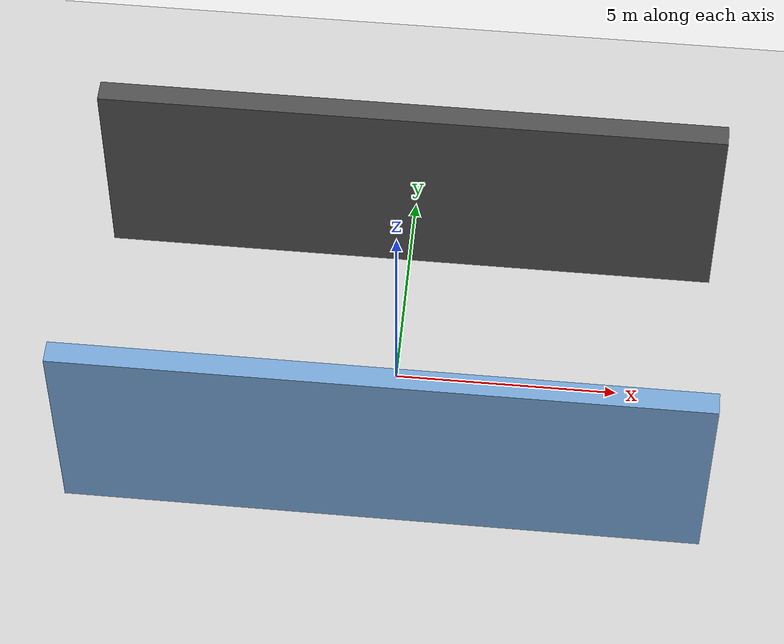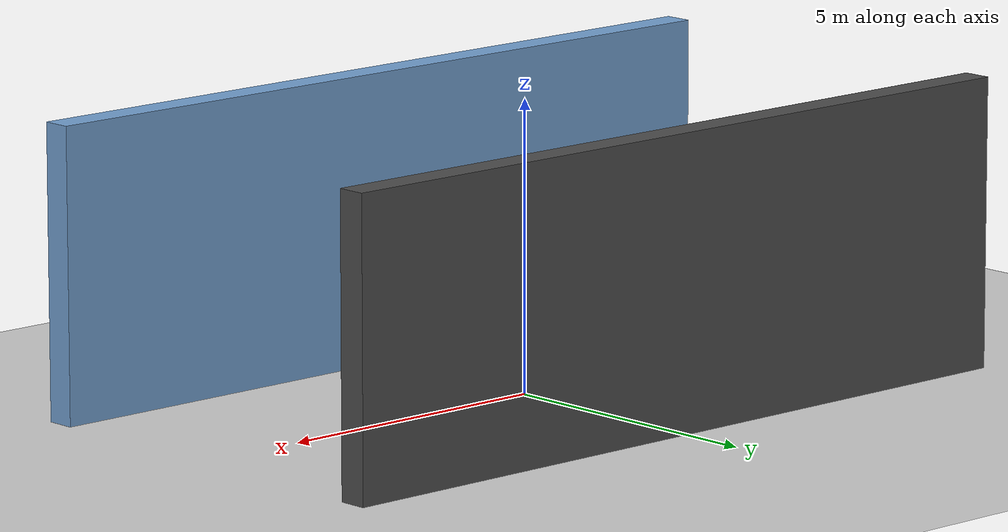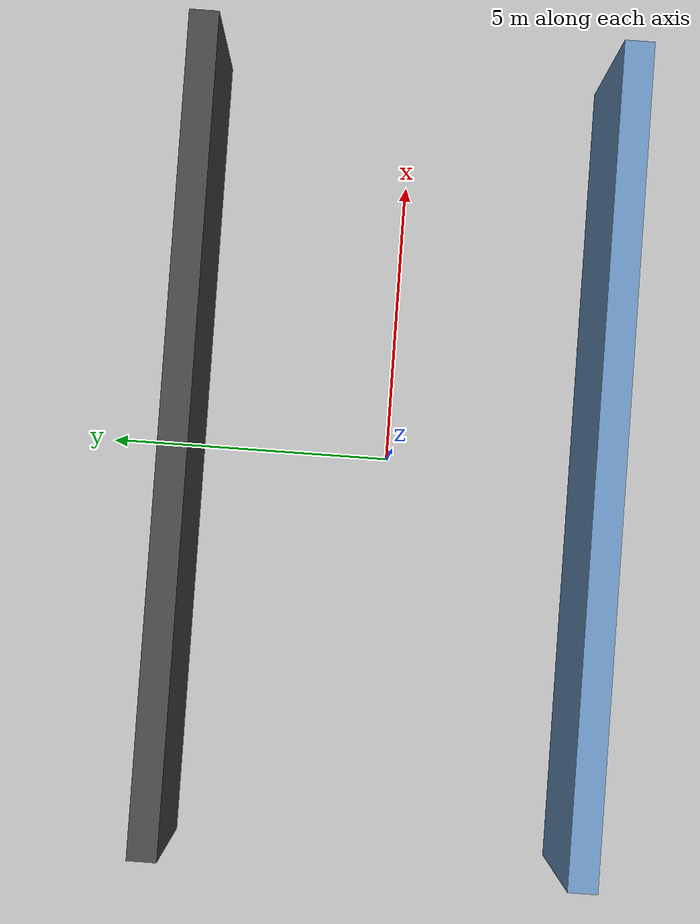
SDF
<?xml version='1.0'?>
<sdf version='1.6'>
  <world name='routeA_rl_v1__yaw_lateral_recovery__rl_train__initial_yaw_offset_corridor__000194'>
    <!-- Sun light -->
    <light name='sun' type='directional'>
      <cast_shadows>1</cast_shadows>
      <pose>0 0 10 0 0 0</pose>
      <diffuse>0.8 0.8 0.8 1</diffuse>
      <specular>0.2 0.2 0.2 1</specular>
      <attenuation>
        <range>1000</range>
        <constant>0.9</constant>
        <linear>0.01</linear>
        <quadratic>0.001</quadratic>
      </attenuation>
      <direction>-0.5 0.1 -0.9</direction>
    </light>

    <!-- Ground plane -->
    <model name='ground_plane'>
      <static>1</static>
      <link name='link'>
        <collision name='collision'>
          <geometry>
            <plane>
              <normal>0 0 1</normal>
              <size>100 100</size>
            </plane>
          </geometry>
          <surface>
            <contact>
              <collide_bitmask>65535</collide_bitmask>
              <ode/>
            </contact>
            <friction>
              <ode>
                <mu>100</mu>
                <mu2>50</mu2>
              </ode>
              <torsional><ode/></torsional>
            </friction>
            <bounce/>
          </surface>
          <max_contacts>10</max_contacts>
        </collision>
        <visual name='visual'>
          <cast_shadows>0</cast_shadows>
          <geometry>
            <plane>
              <normal>0 0 1</normal>
              <size>100 100</size>
            </plane>
          </geometry>
          <material>
            <script>
              <uri>file://media/materials/scripts/gazebo.material</uri>
              <n>Gazebo/Grey</n>
            </script>
          </material>
        </visual>
      </link>
    </model>

    <!-- Environment -->
    <magnetic_field>6e-06 2.3e-05 -4.2e-05</magnetic_field>
    <atmosphere type='adiabatic'/>
    <physics name='default_physics' default='0' type='ode'>
      <gravity>0 0 -9.8</gravity>
      <max_step_size>0.004</max_step_size>
      <real_time_factor>1</real_time_factor>
      <real_time_update_rate>250</real_time_update_rate>
    </physics>
    <scene>
      <ambient>0.4 0.4 0.4 1</ambient>
      <background>0.7 0.7 0.7 1</background>
      <shadows>1</shadows>
    </scene>
    <wind/>
    <spherical_coordinates>
      <surface_model>EARTH_WGS84</surface_model>
      <latitude_deg>0</latitude_deg>
      <longitude_deg>0</longitude_deg>
      <elevation>0</elevation>
      <heading_deg>0</heading_deg>
    </spherical_coordinates>

    <!-- ============ OBSTACLES (2) ============ -->
    <model name='corridor_wall_l'>
      <static>1</static>
      <link name='link'>
        <visual name='visual'>
          <geometry>
            <box>
              <size>14.0000 0.5000 5.0000</size>
            </box>
          </geometry>
          <material>
            <script>
              <n>Gazebo/Blue</n>
              <uri>file://media/materials/scripts/gazebo.material</uri>
            </script>
            <ambient>0.447 0.624 0.812 1</ambient>
          </material>
        </visual>
        <collision name='collision'>
          <geometry>
            <box>
              <size>14.0000 0.5000 5.0000</size>
            </box>
          </geometry>
          <max_contacts>10</max_contacts>
          <surface>
            <contact><ode/></contact>
            <bounce/>
            <friction>
              <ode><mu>1</mu><mu2>1</mu2></ode>
              <torsional><ode/></torsional>
            </friction>
          </surface>
        </collision>
      </link>
      <pose>0.0000 -3.6000 2.5000 0 0 0.0000</pose>
    </model>

    <model name='corridor_wall_r'>
      <static>1</static>
      <link name='link'>
        <visual name='visual'>
          <geometry>
            <box>
              <size>14.0000 0.5000 5.0000</size>
            </box>
          </geometry>
          <material>
            <script>
              <n>Gazebo/DarkGrey</n>
              <uri>file://media/materials/scripts/gazebo.material</uri>
            </script>
            <ambient>0.3 0.3 0.3 1</ambient>
          </material>
        </visual>
        <collision name='collision'>
          <geometry>
            <box>
              <size>14.0000 0.5000 5.0000</size>
            </box>
          </geometry>
          <max_contacts>10</max_contacts>
          <surface>
            <contact><ode/></contact>
            <bounce/>
            <friction>
              <ode><mu>1</mu><mu2>1</mu2></ode>
              <torsional><ode/></torsional>
            </friction>
          </surface>
        </collision>
      </link>
      <pose>0.0000 3.6000 2.5000 0 0 0.0000</pose>
    </model>

    <!-- GUI camera -->
    <gui fullscreen='0'>
      <camera name='user_camera'>
        <pose>-15 0 18 0 0.85 0.15</pose>
        <view_controller>orbit</view_controller>
        <projection_type>perspective</projection_type>
      </camera>
    </gui>
  </world>
</sdf>
